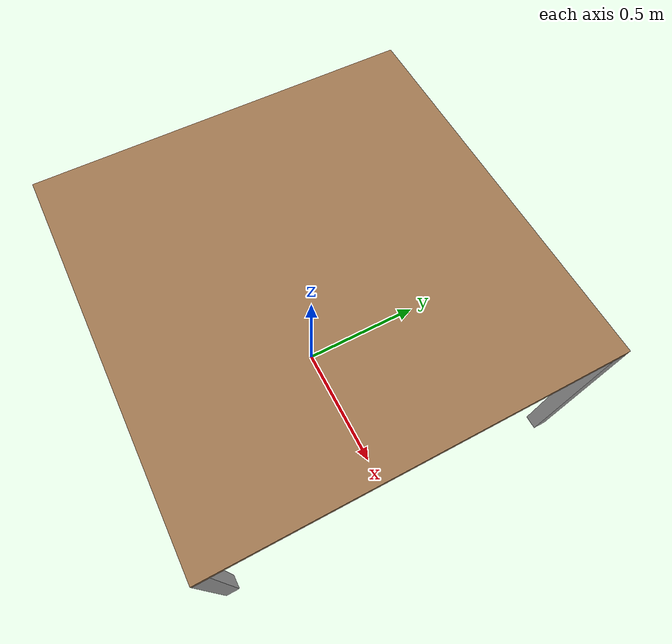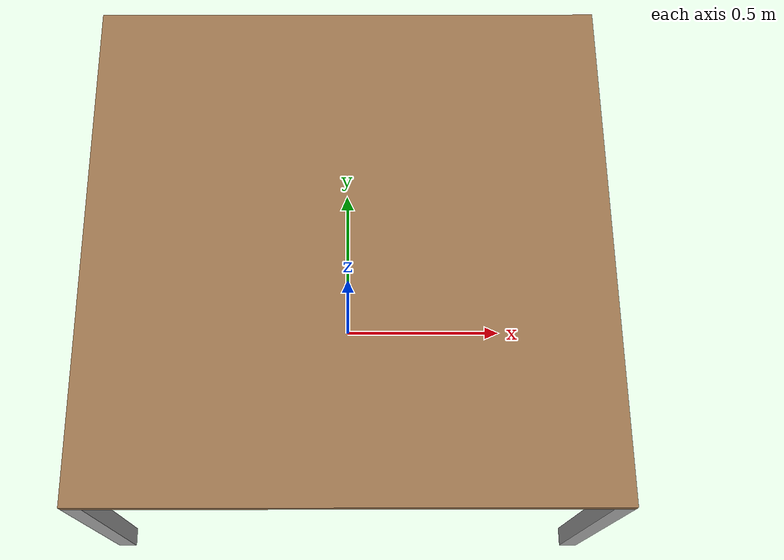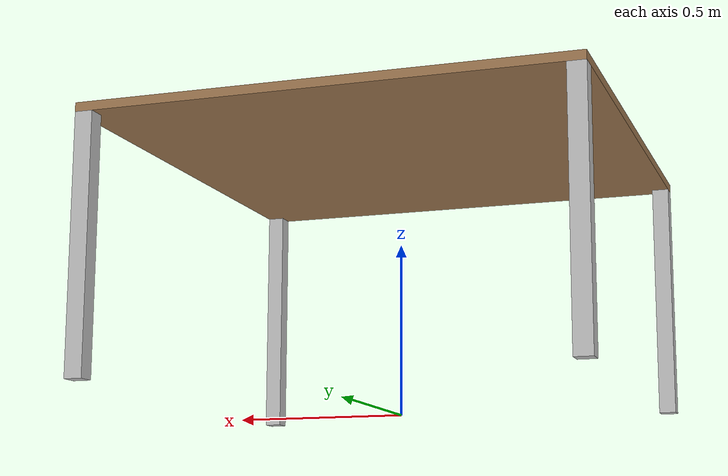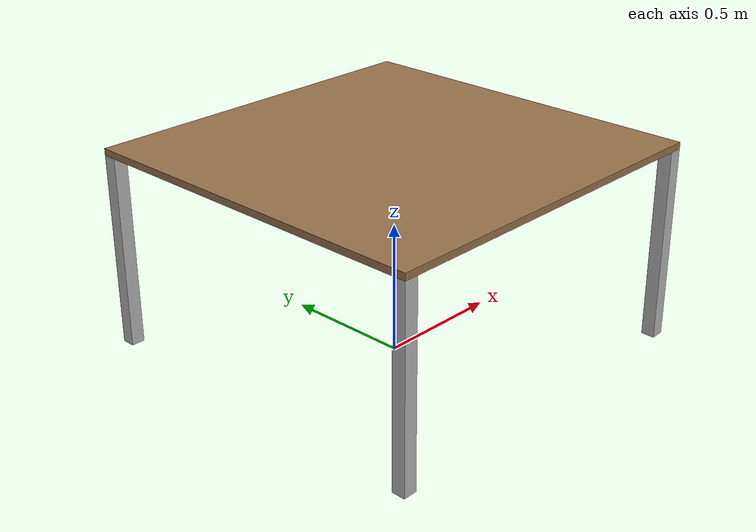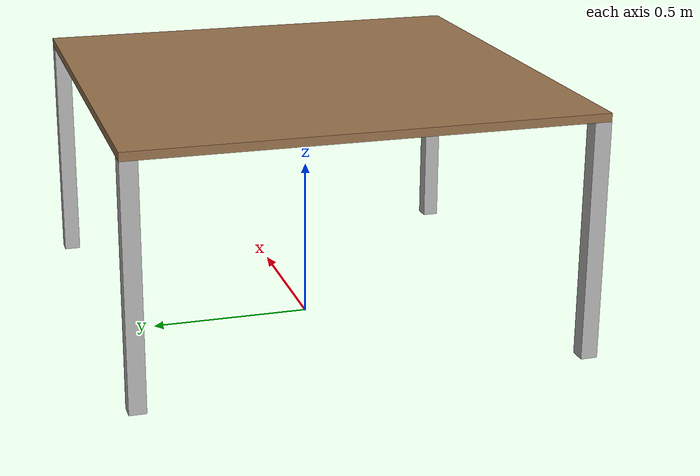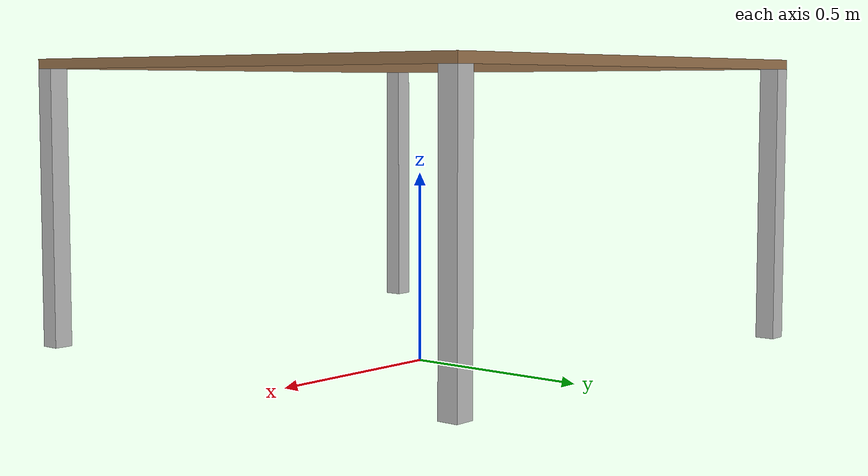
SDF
<?xml version="1.0" ?>
<sdf version="1.6">
  <model name="square_table_dynamic">
    <!-- Dynamic (not static) -->
    <static>false</static>

    <link name="table">
      <!-- Lift the whole model slightly above ground to avoid tunneling -->
      <pose>0 0 0.05 0 0 0</pose>

      <!-- Physics properties -->
      <gravity>true</gravity>
      <self_collide>false</self_collide>
      <kinematic>false</kinematic>

      <!-- Rough inertia box (25 kg) -->
      <inertial>
        <mass>25</mass>
        <inertia>
          <ixx>5.15</ixx>
          <iyy>5.15</iyy>
          <izz>8.13</izz>
          <ixy>0</ixy>
          <ixz>0</ixz>
          <iyz>0</iyz>
        </inertia>
      </inertial>

      <!-- ================= Table Top ================= -->
      <!-- 55 in = 1.397 m, thickness 1 in = 0.0254 m, z center ~0.7367 m -->
      <collision name="top_collision">
        <pose>0 0 0.7367 0 0 0</pose>
        <geometry>
          <box><size>1.397 1.397 0.0254</size></box>
        </geometry>
        <surface>
          <contact/>
          <friction>
            <ode><mu>0.9</mu><mu2>0.9</mu2></ode>
          </friction>
        </surface>
      </collision>

      <visual name="top_visual">
        <pose>0 0 0.7367 0 0 0</pose>
        <geometry>
          <box><size>1.397 1.397 0.0254</size></box>
        </geometry>
        <material>
          <ambient>0.6 0.45 0.3 1</ambient>
          <diffuse>0.6 0.45 0.3 1</diffuse>
        </material>
      </visual>

      <!-- ================= Legs ================= -->
      <!-- Legs: 2 in = 0.0508 m square, 28.5 in = 0.724 m tall -->
      <!-- Leg centers at z=0.362, offset from center = 0.6731 m -->

      <!-- Leg 1 -->
      <collision name="leg1_collision">
        <pose>0.6731 0.6731 0.362 0 0 0</pose>
        <geometry><box><size>0.0508 0.0508 0.724</size></box></geometry>
      </collision>
      <visual name="leg1_visual">
        <pose>0.6731 0.6731 0.362 0 0 0</pose>
        <geometry><box><size>0.0508 0.0508 0.724</size></box></geometry>
      </visual>

      <!-- Leg 2 -->
      <collision name="leg2_collision">
        <pose>-0.6731 0.6731 0.362 0 0 0</pose>
        <geometry><box><size>0.0508 0.0508 0.724</size></box></geometry>
      </collision>
      <visual name="leg2_visual">
        <pose>-0.6731 0.6731 0.362 0 0 0</pose>
        <geometry><box><size>0.0508 0.0508 0.724</size></box></geometry>
      </visual>

      <!-- Leg 3 -->
      <collision name="leg3_collision">
        <pose>-0.6731 -0.6731 0.362 0 0 0</pose>
        <geometry><box><size>0.0508 0.0508 0.724</size></box></geometry>
      </collision>
      <visual name="leg3_visual">
        <pose>-0.6731 -0.6731 0.362 0 0 0</pose>
        <geometry><box><size>0.0508 0.0508 0.724</size></box></geometry>
      </visual>

      <!-- Leg 4 -->
      <collision name="leg4_collision">
        <pose>0.6731 -0.6731 0.362 0 0 0</pose>
        <geometry><box><size>0.0508 0.0508 0.724</size></box></geometry>
      </collision>
      <visual name="leg4_visual">
        <pose>0.6731 -0.6731 0.362 0 0 0</pose>
        <geometry><box><size>0.0508 0.0508 0.724</size></box></geometry>
      </visual>

    </link>
  </model>
</sdf>
